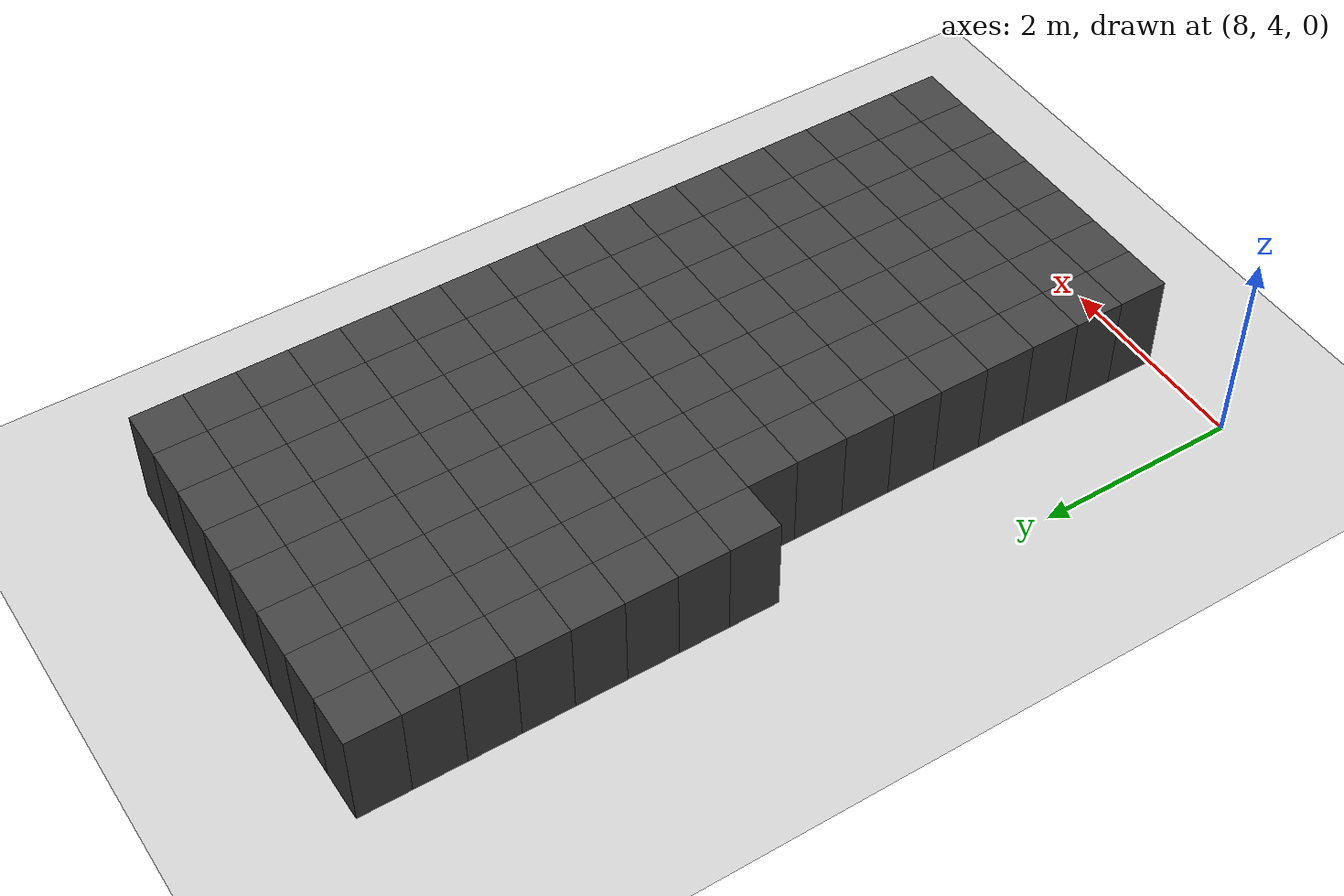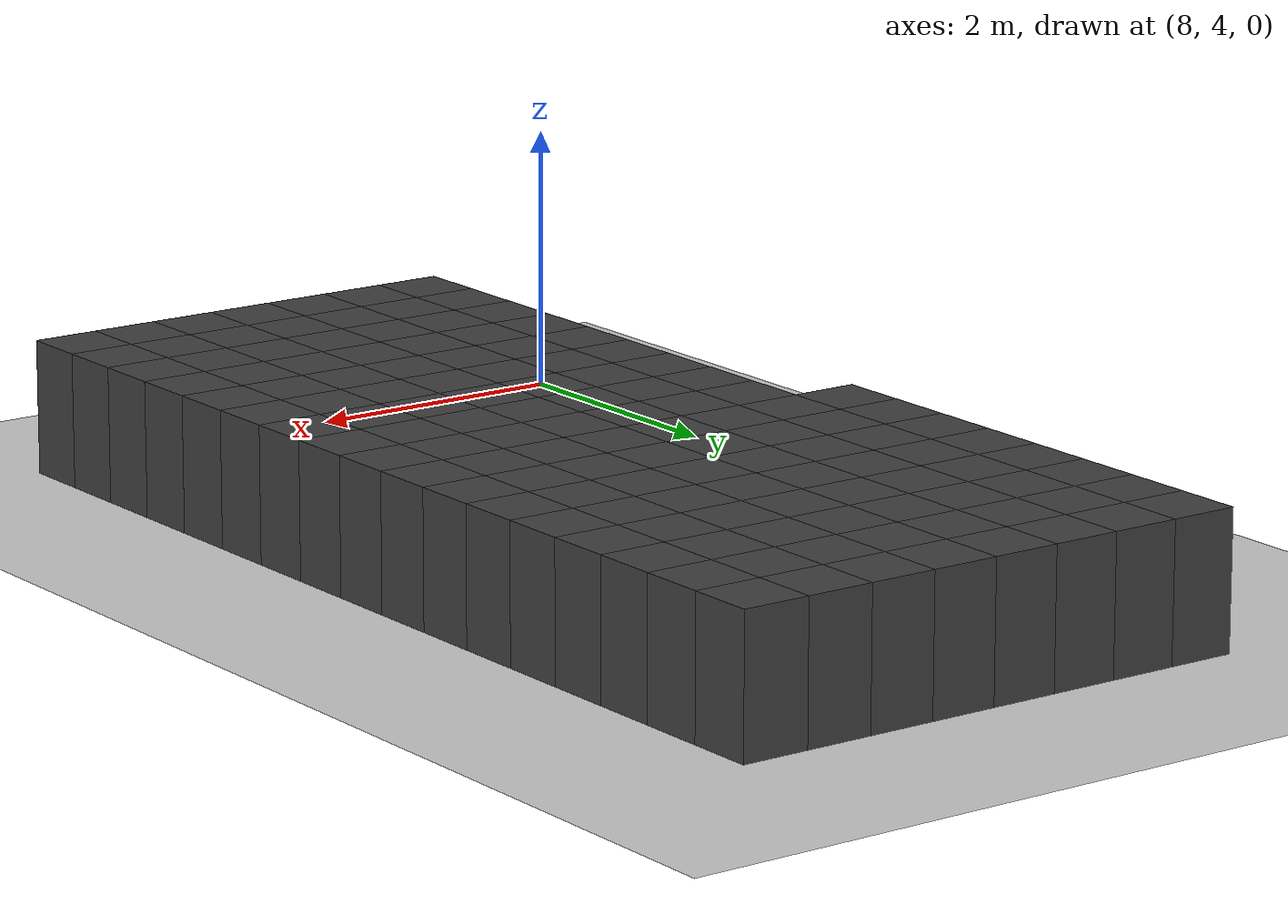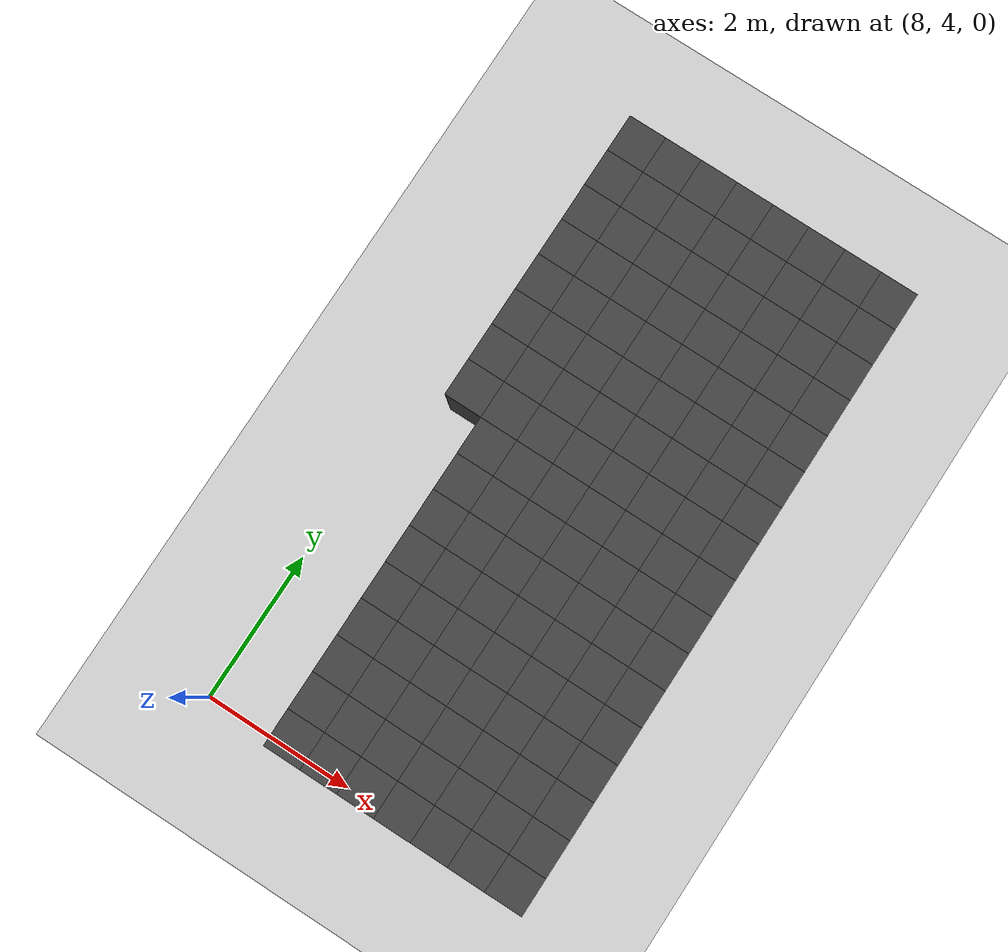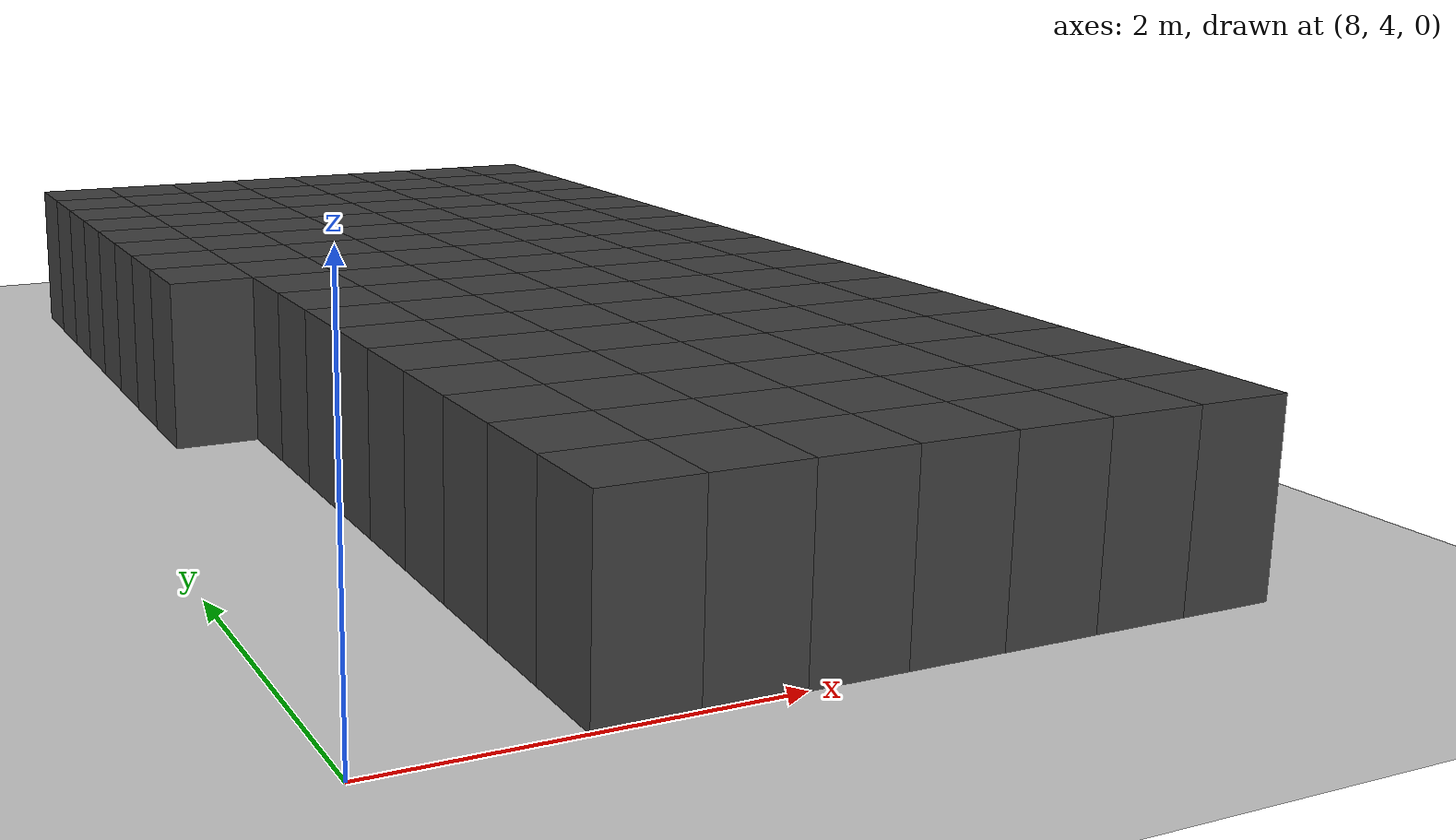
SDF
<sdf version="1.7">
 <world name="map_10777">
  <model name="ground_plane">
   <static>true</static>
   <link name="link">
    <collision name="collision">
     <geometry><plane><normal>0 0 1</normal><size>200 200</size></plane></geometry>
    </collision>
    <visual name="visual">
     <geometry><plane><normal>0 0 1</normal><size>200 200</size></plane></geometry>
     <material><ambient>0.8 0.8 0.8 1</ambient><diffuse>0.8 0.8 0.8 1</diffuse></material>
    </visual>
   </link>
  </model>
  <model name="maze_environment">
   <static>true</static>
   <link name="wall_42">
    <pose>8.750 12.250 0.500 0 0 0</pose>
    <collision name="col"><geometry><box><size>0.5 0.5 1.0</size></box></geometry></collision>
    <visual name="vis">
     <geometry><box><size>0.5 0.5 1.0</size></box></geometry>
     <material><ambient>0.15 0.15 0.15 1</ambient><diffuse>0.25 0.25 0.25 1</diffuse></material>
    </visual>
   </link>
   <link name="wall_43">
    <pose>9.250 12.250 0.500 0 0 0</pose>
    <collision name="col"><geometry><box><size>0.5 0.5 1.0</size></box></geometry></collision>
    <visual name="vis">
     <geometry><box><size>0.5 0.5 1.0</size></box></geometry>
     <material><ambient>0.15 0.15 0.15 1</ambient><diffuse>0.25 0.25 0.25 1</diffuse></material>
    </visual>
   </link>
   <link name="wall_44">
    <pose>9.750 12.250 0.500 0 0 0</pose>
    <collision name="col"><geometry><box><size>0.5 0.5 1.0</size></box></geometry></collision>
    <visual name="vis">
     <geometry><box><size>0.5 0.5 1.0</size></box></geometry>
     <material><ambient>0.15 0.15 0.15 1</ambient><diffuse>0.25 0.25 0.25 1</diffuse></material>
    </visual>
   </link>
   <link name="wall_45">
    <pose>10.250 12.250 0.500 0 0 0</pose>
    <collision name="col"><geometry><box><size>0.5 0.5 1.0</size></box></geometry></collision>
    <visual name="vis">
     <geometry><box><size>0.5 0.5 1.0</size></box></geometry>
     <material><ambient>0.15 0.15 0.15 1</ambient><diffuse>0.25 0.25 0.25 1</diffuse></material>
    </visual>
   </link>
   <link name="wall_46">
    <pose>10.750 12.250 0.500 0 0 0</pose>
    <collision name="col"><geometry><box><size>0.5 0.5 1.0</size></box></geometry></collision>
    <visual name="vis">
     <geometry><box><size>0.5 0.5 1.0</size></box></geometry>
     <material><ambient>0.15 0.15 0.15 1</ambient><diffuse>0.25 0.25 0.25 1</diffuse></material>
    </visual>
   </link>
   <link name="wall_47">
    <pose>11.250 12.250 0.500 0 0 0</pose>
    <collision name="col"><geometry><box><size>0.5 0.5 1.0</size></box></geometry></collision>
    <visual name="vis">
     <geometry><box><size>0.5 0.5 1.0</size></box></geometry>
     <material><ambient>0.15 0.15 0.15 1</ambient><diffuse>0.25 0.25 0.25 1</diffuse></material>
    </visual>
   </link>
   <link name="wall_48">
    <pose>11.750 12.250 0.500 0 0 0</pose>
    <collision name="col"><geometry><box><size>0.5 0.5 1.0</size></box></geometry></collision>
    <visual name="vis">
     <geometry><box><size>0.5 0.5 1.0</size></box></geometry>
     <material><ambient>0.15 0.15 0.15 1</ambient><diffuse>0.25 0.25 0.25 1</diffuse></material>
    </visual>
   </link>
   <link name="wall_49">
    <pose>12.250 12.250 0.500 0 0 0</pose>
    <collision name="col"><geometry><box><size>0.5 0.5 1.0</size></box></geometry></collision>
    <visual name="vis">
     <geometry><box><size>0.5 0.5 1.0</size></box></geometry>
     <material><ambient>0.15 0.15 0.15 1</ambient><diffuse>0.25 0.25 0.25 1</diffuse></material>
    </visual>
   </link>
   <link name="wall_89">
    <pose>8.750 11.750 0.500 0 0 0</pose>
    <collision name="col"><geometry><box><size>0.5 0.5 1.0</size></box></geometry></collision>
    <visual name="vis">
     <geometry><box><size>0.5 0.5 1.0</size></box></geometry>
     <material><ambient>0.15 0.15 0.15 1</ambient><diffuse>0.25 0.25 0.25 1</diffuse></material>
    </visual>
   </link>
   <link name="wall_90">
    <pose>9.250 11.750 0.500 0 0 0</pose>
    <collision name="col"><geometry><box><size>0.5 0.5 1.0</size></box></geometry></collision>
    <visual name="vis">
     <geometry><box><size>0.5 0.5 1.0</size></box></geometry>
     <material><ambient>0.15 0.15 0.15 1</ambient><diffuse>0.25 0.25 0.25 1</diffuse></material>
    </visual>
   </link>
   <link name="wall_91">
    <pose>9.750 11.750 0.500 0 0 0</pose>
    <collision name="col"><geometry><box><size>0.5 0.5 1.0</size></box></geometry></collision>
    <visual name="vis">
     <geometry><box><size>0.5 0.5 1.0</size></box></geometry>
     <material><ambient>0.15 0.15 0.15 1</ambient><diffuse>0.25 0.25 0.25 1</diffuse></material>
    </visual>
   </link>
   <link name="wall_92">
    <pose>10.250 11.750 0.500 0 0 0</pose>
    <collision name="col"><geometry><box><size>0.5 0.5 1.0</size></box></geometry></collision>
    <visual name="vis">
     <geometry><box><size>0.5 0.5 1.0</size></box></geometry>
     <material><ambient>0.15 0.15 0.15 1</ambient><diffuse>0.25 0.25 0.25 1</diffuse></material>
    </visual>
   </link>
   <link name="wall_93">
    <pose>10.750 11.750 0.500 0 0 0</pose>
    <collision name="col"><geometry><box><size>0.5 0.5 1.0</size></box></geometry></collision>
    <visual name="vis">
     <geometry><box><size>0.5 0.5 1.0</size></box></geometry>
     <material><ambient>0.15 0.15 0.15 1</ambient><diffuse>0.25 0.25 0.25 1</diffuse></material>
    </visual>
   </link>
   <link name="wall_94">
    <pose>11.250 11.750 0.500 0 0 0</pose>
    <collision name="col"><geometry><box><size>0.5 0.5 1.0</size></box></geometry></collision>
    <visual name="vis">
     <geometry><box><size>0.5 0.5 1.0</size></box></geometry>
     <material><ambient>0.15 0.15 0.15 1</ambient><diffuse>0.25 0.25 0.25 1</diffuse></material>
    </visual>
   </link>
   <link name="wall_95">
    <pose>11.750 11.750 0.500 0 0 0</pose>
    <collision name="col"><geometry><box><size>0.5 0.5 1.0</size></box></geometry></collision>
    <visual name="vis">
     <geometry><box><size>0.5 0.5 1.0</size></box></geometry>
     <material><ambient>0.15 0.15 0.15 1</ambient><diffuse>0.25 0.25 0.25 1</diffuse></material>
    </visual>
   </link>
   <link name="wall_96">
    <pose>12.250 11.750 0.500 0 0 0</pose>
    <collision name="col"><geometry><box><size>0.5 0.5 1.0</size></box></geometry></collision>
    <visual name="vis">
     <geometry><box><size>0.5 0.5 1.0</size></box></geometry>
     <material><ambient>0.15 0.15 0.15 1</ambient><diffuse>0.25 0.25 0.25 1</diffuse></material>
    </visual>
   </link>
   <link name="wall_136">
    <pose>8.750 11.250 0.500 0 0 0</pose>
    <collision name="col"><geometry><box><size>0.5 0.5 1.0</size></box></geometry></collision>
    <visual name="vis">
     <geometry><box><size>0.5 0.5 1.0</size></box></geometry>
     <material><ambient>0.15 0.15 0.15 1</ambient><diffuse>0.25 0.25 0.25 1</diffuse></material>
    </visual>
   </link>
   <link name="wall_137">
    <pose>9.250 11.250 0.500 0 0 0</pose>
    <collision name="col"><geometry><box><size>0.5 0.5 1.0</size></box></geometry></collision>
    <visual name="vis">
     <geometry><box><size>0.5 0.5 1.0</size></box></geometry>
     <material><ambient>0.15 0.15 0.15 1</ambient><diffuse>0.25 0.25 0.25 1</diffuse></material>
    </visual>
   </link>
   <link name="wall_138">
    <pose>9.750 11.250 0.500 0 0 0</pose>
    <collision name="col"><geometry><box><size>0.5 0.5 1.0</size></box></geometry></collision>
    <visual name="vis">
     <geometry><box><size>0.5 0.5 1.0</size></box></geometry>
     <material><ambient>0.15 0.15 0.15 1</ambient><diffuse>0.25 0.25 0.25 1</diffuse></material>
    </visual>
   </link>
   <link name="wall_139">
    <pose>10.250 11.250 0.500 0 0 0</pose>
    <collision name="col"><geometry><box><size>0.5 0.5 1.0</size></box></geometry></collision>
    <visual name="vis">
     <geometry><box><size>0.5 0.5 1.0</size></box></geometry>
     <material><ambient>0.15 0.15 0.15 1</ambient><diffuse>0.25 0.25 0.25 1</diffuse></material>
    </visual>
   </link>
   <link name="wall_140">
    <pose>10.750 11.250 0.500 0 0 0</pose>
    <collision name="col"><geometry><box><size>0.5 0.5 1.0</size></box></geometry></collision>
    <visual name="vis">
     <geometry><box><size>0.5 0.5 1.0</size></box></geometry>
     <material><ambient>0.15 0.15 0.15 1</ambient><diffuse>0.25 0.25 0.25 1</diffuse></material>
    </visual>
   </link>
   <link name="wall_141">
    <pose>11.250 11.250 0.500 0 0 0</pose>
    <collision name="col"><geometry><box><size>0.5 0.5 1.0</size></box></geometry></collision>
    <visual name="vis">
     <geometry><box><size>0.5 0.5 1.0</size></box></geometry>
     <material><ambient>0.15 0.15 0.15 1</ambient><diffuse>0.25 0.25 0.25 1</diffuse></material>
    </visual>
   </link>
   <link name="wall_142">
    <pose>11.750 11.250 0.500 0 0 0</pose>
    <collision name="col"><geometry><box><size>0.5 0.5 1.0</size></box></geometry></collision>
    <visual name="vis">
     <geometry><box><size>0.5 0.5 1.0</size></box></geometry>
     <material><ambient>0.15 0.15 0.15 1</ambient><diffuse>0.25 0.25 0.25 1</diffuse></material>
    </visual>
   </link>
   <link name="wall_143">
    <pose>12.250 11.250 0.500 0 0 0</pose>
    <collision name="col"><geometry><box><size>0.5 0.5 1.0</size></box></geometry></collision>
    <visual name="vis">
     <geometry><box><size>0.5 0.5 1.0</size></box></geometry>
     <material><ambient>0.15 0.15 0.15 1</ambient><diffuse>0.25 0.25 0.25 1</diffuse></material>
    </visual>
   </link>
   <link name="wall_183">
    <pose>8.750 10.750 0.500 0 0 0</pose>
    <collision name="col"><geometry><box><size>0.5 0.5 1.0</size></box></geometry></collision>
    <visual name="vis">
     <geometry><box><size>0.5 0.5 1.0</size></box></geometry>
     <material><ambient>0.15 0.15 0.15 1</ambient><diffuse>0.25 0.25 0.25 1</diffuse></material>
    </visual>
   </link>
   <link name="wall_184">
    <pose>9.250 10.750 0.500 0 0 0</pose>
    <collision name="col"><geometry><box><size>0.5 0.5 1.0</size></box></geometry></collision>
    <visual name="vis">
     <geometry><box><size>0.5 0.5 1.0</size></box></geometry>
     <material><ambient>0.15 0.15 0.15 1</ambient><diffuse>0.25 0.25 0.25 1</diffuse></material>
    </visual>
   </link>
   <link name="wall_185">
    <pose>9.750 10.750 0.500 0 0 0</pose>
    <collision name="col"><geometry><box><size>0.5 0.5 1.0</size></box></geometry></collision>
    <visual name="vis">
     <geometry><box><size>0.5 0.5 1.0</size></box></geometry>
     <material><ambient>0.15 0.15 0.15 1</ambient><diffuse>0.25 0.25 0.25 1</diffuse></material>
    </visual>
   </link>
   <link name="wall_186">
    <pose>10.250 10.750 0.500 0 0 0</pose>
    <collision name="col"><geometry><box><size>0.5 0.5 1.0</size></box></geometry></collision>
    <visual name="vis">
     <geometry><box><size>0.5 0.5 1.0</size></box></geometry>
     <material><ambient>0.15 0.15 0.15 1</ambient><diffuse>0.25 0.25 0.25 1</diffuse></material>
    </visual>
   </link>
   <link name="wall_187">
    <pose>10.750 10.750 0.500 0 0 0</pose>
    <collision name="col"><geometry><box><size>0.5 0.5 1.0</size></box></geometry></collision>
    <visual name="vis">
     <geometry><box><size>0.5 0.5 1.0</size></box></geometry>
     <material><ambient>0.15 0.15 0.15 1</ambient><diffuse>0.25 0.25 0.25 1</diffuse></material>
    </visual>
   </link>
   <link name="wall_188">
    <pose>11.250 10.750 0.500 0 0 0</pose>
    <collision name="col"><geometry><box><size>0.5 0.5 1.0</size></box></geometry></collision>
    <visual name="vis">
     <geometry><box><size>0.5 0.5 1.0</size></box></geometry>
     <material><ambient>0.15 0.15 0.15 1</ambient><diffuse>0.25 0.25 0.25 1</diffuse></material>
    </visual>
   </link>
   <link name="wall_189">
    <pose>11.750 10.750 0.500 0 0 0</pose>
    <collision name="col"><geometry><box><size>0.5 0.5 1.0</size></box></geometry></collision>
    <visual name="vis">
     <geometry><box><size>0.5 0.5 1.0</size></box></geometry>
     <material><ambient>0.15 0.15 0.15 1</ambient><diffuse>0.25 0.25 0.25 1</diffuse></material>
    </visual>
   </link>
   <link name="wall_190">
    <pose>12.250 10.750 0.500 0 0 0</pose>
    <collision name="col"><geometry><box><size>0.5 0.5 1.0</size></box></geometry></collision>
    <visual name="vis">
     <geometry><box><size>0.5 0.5 1.0</size></box></geometry>
     <material><ambient>0.15 0.15 0.15 1</ambient><diffuse>0.25 0.25 0.25 1</diffuse></material>
    </visual>
   </link>
   <link name="wall_232">
    <pose>8.750 10.250 0.500 0 0 0</pose>
    <collision name="col"><geometry><box><size>0.5 0.5 1.0</size></box></geometry></collision>
    <visual name="vis">
     <geometry><box><size>0.5 0.5 1.0</size></box></geometry>
     <material><ambient>0.15 0.15 0.15 1</ambient><diffuse>0.25 0.25 0.25 1</diffuse></material>
    </visual>
   </link>
   <link name="wall_233">
    <pose>9.250 10.250 0.500 0 0 0</pose>
    <collision name="col"><geometry><box><size>0.5 0.5 1.0</size></box></geometry></collision>
    <visual name="vis">
     <geometry><box><size>0.5 0.5 1.0</size></box></geometry>
     <material><ambient>0.15 0.15 0.15 1</ambient><diffuse>0.25 0.25 0.25 1</diffuse></material>
    </visual>
   </link>
   <link name="wall_234">
    <pose>9.750 10.250 0.500 0 0 0</pose>
    <collision name="col"><geometry><box><size>0.5 0.5 1.0</size></box></geometry></collision>
    <visual name="vis">
     <geometry><box><size>0.5 0.5 1.0</size></box></geometry>
     <material><ambient>0.15 0.15 0.15 1</ambient><diffuse>0.25 0.25 0.25 1</diffuse></material>
    </visual>
   </link>
   <link name="wall_235">
    <pose>10.250 10.250 0.500 0 0 0</pose>
    <collision name="col"><geometry><box><size>0.5 0.5 1.0</size></box></geometry></collision>
    <visual name="vis">
     <geometry><box><size>0.5 0.5 1.0</size></box></geometry>
     <material><ambient>0.15 0.15 0.15 1</ambient><diffuse>0.25 0.25 0.25 1</diffuse></material>
    </visual>
   </link>
   <link name="wall_236">
    <pose>10.750 10.250 0.500 0 0 0</pose>
    <collision name="col"><geometry><box><size>0.5 0.5 1.0</size></box></geometry></collision>
    <visual name="vis">
     <geometry><box><size>0.5 0.5 1.0</size></box></geometry>
     <material><ambient>0.15 0.15 0.15 1</ambient><diffuse>0.25 0.25 0.25 1</diffuse></material>
    </visual>
   </link>
   <link name="wall_237">
    <pose>11.250 10.250 0.500 0 0 0</pose>
    <collision name="col"><geometry><box><size>0.5 0.5 1.0</size></box></geometry></collision>
    <visual name="vis">
     <geometry><box><size>0.5 0.5 1.0</size></box></geometry>
     <material><ambient>0.15 0.15 0.15 1</ambient><diffuse>0.25 0.25 0.25 1</diffuse></material>
    </visual>
   </link>
   <link name="wall_238">
    <pose>11.750 10.250 0.500 0 0 0</pose>
    <collision name="col"><geometry><box><size>0.5 0.5 1.0</size></box></geometry></collision>
    <visual name="vis">
     <geometry><box><size>0.5 0.5 1.0</size></box></geometry>
     <material><ambient>0.15 0.15 0.15 1</ambient><diffuse>0.25 0.25 0.25 1</diffuse></material>
    </visual>
   </link>
   <link name="wall_239">
    <pose>12.250 10.250 0.500 0 0 0</pose>
    <collision name="col"><geometry><box><size>0.5 0.5 1.0</size></box></geometry></collision>
    <visual name="vis">
     <geometry><box><size>0.5 0.5 1.0</size></box></geometry>
     <material><ambient>0.15 0.15 0.15 1</ambient><diffuse>0.25 0.25 0.25 1</diffuse></material>
    </visual>
   </link>
   <link name="wall_281">
    <pose>8.750 9.750 0.500 0 0 0</pose>
    <collision name="col"><geometry><box><size>0.5 0.5 1.0</size></box></geometry></collision>
    <visual name="vis">
     <geometry><box><size>0.5 0.5 1.0</size></box></geometry>
     <material><ambient>0.15 0.15 0.15 1</ambient><diffuse>0.25 0.25 0.25 1</diffuse></material>
    </visual>
   </link>
   <link name="wall_282">
    <pose>9.250 9.750 0.500 0 0 0</pose>
    <collision name="col"><geometry><box><size>0.5 0.5 1.0</size></box></geometry></collision>
    <visual name="vis">
     <geometry><box><size>0.5 0.5 1.0</size></box></geometry>
     <material><ambient>0.15 0.15 0.15 1</ambient><diffuse>0.25 0.25 0.25 1</diffuse></material>
    </visual>
   </link>
   <link name="wall_283">
    <pose>9.750 9.750 0.500 0 0 0</pose>
    <collision name="col"><geometry><box><size>0.5 0.5 1.0</size></box></geometry></collision>
    <visual name="vis">
     <geometry><box><size>0.5 0.5 1.0</size></box></geometry>
     <material><ambient>0.15 0.15 0.15 1</ambient><diffuse>0.25 0.25 0.25 1</diffuse></material>
    </visual>
   </link>
   <link name="wall_284">
    <pose>10.250 9.750 0.500 0 0 0</pose>
    <collision name="col"><geometry><box><size>0.5 0.5 1.0</size></box></geometry></collision>
    <visual name="vis">
     <geometry><box><size>0.5 0.5 1.0</size></box></geometry>
     <material><ambient>0.15 0.15 0.15 1</ambient><diffuse>0.25 0.25 0.25 1</diffuse></material>
    </visual>
   </link>
   <link name="wall_285">
    <pose>10.750 9.750 0.500 0 0 0</pose>
    <collision name="col"><geometry><box><size>0.5 0.5 1.0</size></box></geometry></collision>
    <visual name="vis">
     <geometry><box><size>0.5 0.5 1.0</size></box></geometry>
     <material><ambient>0.15 0.15 0.15 1</ambient><diffuse>0.25 0.25 0.25 1</diffuse></material>
    </visual>
   </link>
   <link name="wall_286">
    <pose>11.250 9.750 0.500 0 0 0</pose>
    <collision name="col"><geometry><box><size>0.5 0.5 1.0</size></box></geometry></collision>
    <visual name="vis">
     <geometry><box><size>0.5 0.5 1.0</size></box></geometry>
     <material><ambient>0.15 0.15 0.15 1</ambient><diffuse>0.25 0.25 0.25 1</diffuse></material>
    </visual>
   </link>
   <link name="wall_287">
    <pose>11.750 9.750 0.500 0 0 0</pose>
    <collision name="col"><geometry><box><size>0.5 0.5 1.0</size></box></geometry></collision>
    <visual name="vis">
     <geometry><box><size>0.5 0.5 1.0</size></box></geometry>
     <material><ambient>0.15 0.15 0.15 1</ambient><diffuse>0.25 0.25 0.25 1</diffuse></material>
    </visual>
   </link>
   <link name="wall_288">
    <pose>12.250 9.750 0.500 0 0 0</pose>
    <collision name="col"><geometry><box><size>0.5 0.5 1.0</size></box></geometry></collision>
    <visual name="vis">
     <geometry><box><size>0.5 0.5 1.0</size></box></geometry>
     <material><ambient>0.15 0.15 0.15 1</ambient><diffuse>0.25 0.25 0.25 1</diffuse></material>
    </visual>
   </link>
   <link name="wall_330">
    <pose>8.750 9.250 0.500 0 0 0</pose>
    <collision name="col"><geometry><box><size>0.5 0.5 1.0</size></box></geometry></collision>
    <visual name="vis">
     <geometry><box><size>0.5 0.5 1.0</size></box></geometry>
     <material><ambient>0.15 0.15 0.15 1</ambient><diffuse>0.25 0.25 0.25 1</diffuse></material>
    </visual>
   </link>
   <link name="wall_331">
    <pose>9.250 9.250 0.500 0 0 0</pose>
    <collision name="col"><geometry><box><size>0.5 0.5 1.0</size></box></geometry></collision>
    <visual name="vis">
     <geometry><box><size>0.5 0.5 1.0</size></box></geometry>
     <material><ambient>0.15 0.15 0.15 1</ambient><diffuse>0.25 0.25 0.25 1</diffuse></material>
    </visual>
   </link>
   <link name="wall_332">
    <pose>9.750 9.250 0.500 0 0 0</pose>
    <collision name="col"><geometry><box><size>0.5 0.5 1.0</size></box></geometry></collision>
    <visual name="vis">
     <geometry><box><size>0.5 0.5 1.0</size></box></geometry>
     <material><ambient>0.15 0.15 0.15 1</ambient><diffuse>0.25 0.25 0.25 1</diffuse></material>
    </visual>
   </link>
   <link name="wall_333">
    <pose>10.250 9.250 0.500 0 0 0</pose>
    <collision name="col"><geometry><box><size>0.5 0.5 1.0</size></box></geometry></collision>
    <visual name="vis">
     <geometry><box><size>0.5 0.5 1.0</size></box></geometry>
     <material><ambient>0.15 0.15 0.15 1</ambient><diffuse>0.25 0.25 0.25 1</diffuse></material>
    </visual>
   </link>
   <link name="wall_334">
    <pose>10.750 9.250 0.500 0 0 0</pose>
    <collision name="col"><geometry><box><size>0.5 0.5 1.0</size></box></geometry></collision>
    <visual name="vis">
     <geometry><box><size>0.5 0.5 1.0</size></box></geometry>
     <material><ambient>0.15 0.15 0.15 1</ambient><diffuse>0.25 0.25 0.25 1</diffuse></material>
    </visual>
   </link>
   <link name="wall_335">
    <pose>11.250 9.250 0.500 0 0 0</pose>
    <collision name="col"><geometry><box><size>0.5 0.5 1.0</size></box></geometry></collision>
    <visual name="vis">
     <geometry><box><size>0.5 0.5 1.0</size></box></geometry>
     <material><ambient>0.15 0.15 0.15 1</ambient><diffuse>0.25 0.25 0.25 1</diffuse></material>
    </visual>
   </link>
   <link name="wall_336">
    <pose>11.750 9.250 0.500 0 0 0</pose>
    <collision name="col"><geometry><box><size>0.5 0.5 1.0</size></box></geometry></collision>
    <visual name="vis">
     <geometry><box><size>0.5 0.5 1.0</size></box></geometry>
     <material><ambient>0.15 0.15 0.15 1</ambient><diffuse>0.25 0.25 0.25 1</diffuse></material>
    </visual>
   </link>
   <link name="wall_337">
    <pose>12.250 9.250 0.500 0 0 0</pose>
    <collision name="col"><geometry><box><size>0.5 0.5 1.0</size></box></geometry></collision>
    <visual name="vis">
     <geometry><box><size>0.5 0.5 1.0</size></box></geometry>
     <material><ambient>0.15 0.15 0.15 1</ambient><diffuse>0.25 0.25 0.25 1</diffuse></material>
    </visual>
   </link>
   <link name="wall_379">
    <pose>8.750 8.750 0.500 0 0 0</pose>
    <collision name="col"><geometry><box><size>0.5 0.5 1.0</size></box></geometry></collision>
    <visual name="vis">
     <geometry><box><size>0.5 0.5 1.0</size></box></geometry>
     <material><ambient>0.15 0.15 0.15 1</ambient><diffuse>0.25 0.25 0.25 1</diffuse></material>
    </visual>
   </link>
   <link name="wall_380">
    <pose>9.250 8.750 0.500 0 0 0</pose>
    <collision name="col"><geometry><box><size>0.5 0.5 1.0</size></box></geometry></collision>
    <visual name="vis">
     <geometry><box><size>0.5 0.5 1.0</size></box></geometry>
     <material><ambient>0.15 0.15 0.15 1</ambient><diffuse>0.25 0.25 0.25 1</diffuse></material>
    </visual>
   </link>
   <link name="wall_381">
    <pose>9.750 8.750 0.500 0 0 0</pose>
    <collision name="col"><geometry><box><size>0.5 0.5 1.0</size></box></geometry></collision>
    <visual name="vis">
     <geometry><box><size>0.5 0.5 1.0</size></box></geometry>
     <material><ambient>0.15 0.15 0.15 1</ambient><diffuse>0.25 0.25 0.25 1</diffuse></material>
    </visual>
   </link>
   <link name="wall_382">
    <pose>10.250 8.750 0.500 0 0 0</pose>
    <collision name="col"><geometry><box><size>0.5 0.5 1.0</size></box></geometry></collision>
    <visual name="vis">
     <geometry><box><size>0.5 0.5 1.0</size></box></geometry>
     <material><ambient>0.15 0.15 0.15 1</ambient><diffuse>0.25 0.25 0.25 1</diffuse></material>
    </visual>
   </link>
   <link name="wall_383">
    <pose>10.750 8.750 0.500 0 0 0</pose>
    <collision name="col"><geometry><box><size>0.5 0.5 1.0</size></box></geometry></collision>
    <visual name="vis">
     <geometry><box><size>0.5 0.5 1.0</size></box></geometry>
     <material><ambient>0.15 0.15 0.15 1</ambient><diffuse>0.25 0.25 0.25 1</diffuse></material>
    </visual>
   </link>
   <link name="wall_384">
    <pose>11.250 8.750 0.500 0 0 0</pose>
    <collision name="col"><geometry><box><size>0.5 0.5 1.0</size></box></geometry></collision>
    <visual name="vis">
     <geometry><box><size>0.5 0.5 1.0</size></box></geometry>
     <material><ambient>0.15 0.15 0.15 1</ambient><diffuse>0.25 0.25 0.25 1</diffuse></material>
    </visual>
   </link>
   <link name="wall_385">
    <pose>11.750 8.750 0.500 0 0 0</pose>
    <collision name="col"><geometry><box><size>0.5 0.5 1.0</size></box></geometry></collision>
    <visual name="vis">
     <geometry><box><size>0.5 0.5 1.0</size></box></geometry>
     <material><ambient>0.15 0.15 0.15 1</ambient><diffuse>0.25 0.25 0.25 1</diffuse></material>
    </visual>
   </link>
   <link name="wall_386">
    <pose>12.250 8.750 0.500 0 0 0</pose>
    <collision name="col"><geometry><box><size>0.5 0.5 1.0</size></box></geometry></collision>
    <visual name="vis">
     <geometry><box><size>0.5 0.5 1.0</size></box></geometry>
     <material><ambient>0.15 0.15 0.15 1</ambient><diffuse>0.25 0.25 0.25 1</diffuse></material>
    </visual>
   </link>
   <link name="wall_429">
    <pose>9.250 8.250 0.500 0 0 0</pose>
    <collision name="col"><geometry><box><size>0.5 0.5 1.0</size></box></geometry></collision>
    <visual name="vis">
     <geometry><box><size>0.5 0.5 1.0</size></box></geometry>
     <material><ambient>0.15 0.15 0.15 1</ambient><diffuse>0.25 0.25 0.25 1</diffuse></material>
    </visual>
   </link>
   <link name="wall_430">
    <pose>9.750 8.250 0.500 0 0 0</pose>
    <collision name="col"><geometry><box><size>0.5 0.5 1.0</size></box></geometry></collision>
    <visual name="vis">
     <geometry><box><size>0.5 0.5 1.0</size></box></geometry>
     <material><ambient>0.15 0.15 0.15 1</ambient><diffuse>0.25 0.25 0.25 1</diffuse></material>
    </visual>
   </link>
   <link name="wall_431">
    <pose>10.250 8.250 0.500 0 0 0</pose>
    <collision name="col"><geometry><box><size>0.5 0.5 1.0</size></box></geometry></collision>
    <visual name="vis">
     <geometry><box><size>0.5 0.5 1.0</size></box></geometry>
     <material><ambient>0.15 0.15 0.15 1</ambient><diffuse>0.25 0.25 0.25 1</diffuse></material>
    </visual>
   </link>
   <link name="wall_432">
    <pose>10.750 8.250 0.500 0 0 0</pose>
    <collision name="col"><geometry><box><size>0.5 0.5 1.0</size></box></geometry></collision>
    <visual name="vis">
     <geometry><box><size>0.5 0.5 1.0</size></box></geometry>
     <material><ambient>0.15 0.15 0.15 1</ambient><diffuse>0.25 0.25 0.25 1</diffuse></material>
    </visual>
   </link>
   <link name="wall_433">
    <pose>11.250 8.250 0.500 0 0 0</pose>
    <collision name="col"><geometry><box><size>0.5 0.5 1.0</size></box></geometry></collision>
    <visual name="vis">
     <geometry><box><size>0.5 0.5 1.0</size></box></geometry>
     <material><ambient>0.15 0.15 0.15 1</ambient><diffuse>0.25 0.25 0.25 1</diffuse></material>
    </visual>
   </link>
   <link name="wall_434">
    <pose>11.750 8.250 0.500 0 0 0</pose>
    <collision name="col"><geometry><box><size>0.5 0.5 1.0</size></box></geometry></collision>
    <visual name="vis">
     <geometry><box><size>0.5 0.5 1.0</size></box></geometry>
     <material><ambient>0.15 0.15 0.15 1</ambient><diffuse>0.25 0.25 0.25 1</diffuse></material>
    </visual>
   </link>
   <link name="wall_435">
    <pose>12.250 8.250 0.500 0 0 0</pose>
    <collision name="col"><geometry><box><size>0.5 0.5 1.0</size></box></geometry></collision>
    <visual name="vis">
     <geometry><box><size>0.5 0.5 1.0</size></box></geometry>
     <material><ambient>0.15 0.15 0.15 1</ambient><diffuse>0.25 0.25 0.25 1</diffuse></material>
    </visual>
   </link>
   <link name="wall_478">
    <pose>9.250 7.750 0.500 0 0 0</pose>
    <collision name="col"><geometry><box><size>0.5 0.5 1.0</size></box></geometry></collision>
    <visual name="vis">
     <geometry><box><size>0.5 0.5 1.0</size></box></geometry>
     <material><ambient>0.15 0.15 0.15 1</ambient><diffuse>0.25 0.25 0.25 1</diffuse></material>
    </visual>
   </link>
   <link name="wall_479">
    <pose>9.750 7.750 0.500 0 0 0</pose>
    <collision name="col"><geometry><box><size>0.5 0.5 1.0</size></box></geometry></collision>
    <visual name="vis">
     <geometry><box><size>0.5 0.5 1.0</size></box></geometry>
     <material><ambient>0.15 0.15 0.15 1</ambient><diffuse>0.25 0.25 0.25 1</diffuse></material>
    </visual>
   </link>
   <link name="wall_480">
    <pose>10.250 7.750 0.500 0 0 0</pose>
    <collision name="col"><geometry><box><size>0.5 0.5 1.0</size></box></geometry></collision>
    <visual name="vis">
     <geometry><box><size>0.5 0.5 1.0</size></box></geometry>
     <material><ambient>0.15 0.15 0.15 1</ambient><diffuse>0.25 0.25 0.25 1</diffuse></material>
    </visual>
   </link>
   <link name="wall_481">
    <pose>10.750 7.750 0.500 0 0 0</pose>
    <collision name="col"><geometry><box><size>0.5 0.5 1.0</size></box></geometry></collision>
    <visual name="vis">
     <geometry><box><size>0.5 0.5 1.0</size></box></geometry>
     <material><ambient>0.15 0.15 0.15 1</ambient><diffuse>0.25 0.25 0.25 1</diffuse></material>
    </visual>
   </link>
   <link name="wall_482">
    <pose>11.250 7.750 0.500 0 0 0</pose>
    <collision name="col"><geometry><box><size>0.5 0.5 1.0</size></box></geometry></collision>
    <visual name="vis">
     <geometry><box><size>0.5 0.5 1.0</size></box></geometry>
     <material><ambient>0.15 0.15 0.15 1</ambient><diffuse>0.25 0.25 0.25 1</diffuse></material>
    </visual>
   </link>
   <link name="wall_483">
    <pose>11.750 7.750 0.500 0 0 0</pose>
    <collision name="col"><geometry><box><size>0.5 0.5 1.0</size></box></geometry></collision>
    <visual name="vis">
     <geometry><box><size>0.5 0.5 1.0</size></box></geometry>
     <material><ambient>0.15 0.15 0.15 1</ambient><diffuse>0.25 0.25 0.25 1</diffuse></material>
    </visual>
   </link>
   <link name="wall_484">
    <pose>12.250 7.750 0.500 0 0 0</pose>
    <collision name="col"><geometry><box><size>0.5 0.5 1.0</size></box></geometry></collision>
    <visual name="vis">
     <geometry><box><size>0.5 0.5 1.0</size></box></geometry>
     <material><ambient>0.15 0.15 0.15 1</ambient><diffuse>0.25 0.25 0.25 1</diffuse></material>
    </visual>
   </link>
   <link name="wall_521">
    <pose>9.250 7.250 0.500 0 0 0</pose>
    <collision name="col"><geometry><box><size>0.5 0.5 1.0</size></box></geometry></collision>
    <visual name="vis">
     <geometry><box><size>0.5 0.5 1.0</size></box></geometry>
     <material><ambient>0.15 0.15 0.15 1</ambient><diffuse>0.25 0.25 0.25 1</diffuse></material>
    </visual>
   </link>
   <link name="wall_522">
    <pose>9.750 7.250 0.500 0 0 0</pose>
    <collision name="col"><geometry><box><size>0.5 0.5 1.0</size></box></geometry></collision>
    <visual name="vis">
     <geometry><box><size>0.5 0.5 1.0</size></box></geometry>
     <material><ambient>0.15 0.15 0.15 1</ambient><diffuse>0.25 0.25 0.25 1</diffuse></material>
    </visual>
   </link>
   <link name="wall_523">
    <pose>10.250 7.250 0.500 0 0 0</pose>
    <collision name="col"><geometry><box><size>0.5 0.5 1.0</size></box></geometry></collision>
    <visual name="vis">
     <geometry><box><size>0.5 0.5 1.0</size></box></geometry>
     <material><ambient>0.15 0.15 0.15 1</ambient><diffuse>0.25 0.25 0.25 1</diffuse></material>
    </visual>
   </link>
   <link name="wall_524">
    <pose>10.750 7.250 0.500 0 0 0</pose>
    <collision name="col"><geometry><box><size>0.5 0.5 1.0</size></box></geometry></collision>
    <visual name="vis">
     <geometry><box><size>0.5 0.5 1.0</size></box></geometry>
     <material><ambient>0.15 0.15 0.15 1</ambient><diffuse>0.25 0.25 0.25 1</diffuse></material>
    </visual>
   </link>
   <link name="wall_525">
    <pose>11.250 7.250 0.500 0 0 0</pose>
    <collision name="col"><geometry><box><size>0.5 0.5 1.0</size></box></geometry></collision>
    <visual name="vis">
     <geometry><box><size>0.5 0.5 1.0</size></box></geometry>
     <material><ambient>0.15 0.15 0.15 1</ambient><diffuse>0.25 0.25 0.25 1</diffuse></material>
    </visual>
   </link>
   <link name="wall_526">
    <pose>11.750 7.250 0.500 0 0 0</pose>
    <collision name="col"><geometry><box><size>0.5 0.5 1.0</size></box></geometry></collision>
    <visual name="vis">
     <geometry><box><size>0.5 0.5 1.0</size></box></geometry>
     <material><ambient>0.15 0.15 0.15 1</ambient><diffuse>0.25 0.25 0.25 1</diffuse></material>
    </visual>
   </link>
   <link name="wall_527">
    <pose>12.250 7.250 0.500 0 0 0</pose>
    <collision name="col"><geometry><box><size>0.5 0.5 1.0</size></box></geometry></collision>
    <visual name="vis">
     <geometry><box><size>0.5 0.5 1.0</size></box></geometry>
     <material><ambient>0.15 0.15 0.15 1</ambient><diffuse>0.25 0.25 0.25 1</diffuse></material>
    </visual>
   </link>
   <link name="wall_564">
    <pose>9.250 6.750 0.500 0 0 0</pose>
    <collision name="col"><geometry><box><size>0.5 0.5 1.0</size></box></geometry></collision>
    <visual name="vis">
     <geometry><box><size>0.5 0.5 1.0</size></box></geometry>
     <material><ambient>0.15 0.15 0.15 1</ambient><diffuse>0.25 0.25 0.25 1</diffuse></material>
    </visual>
   </link>
   <link name="wall_565">
    <pose>9.750 6.750 0.500 0 0 0</pose>
    <collision name="col"><geometry><box><size>0.5 0.5 1.0</size></box></geometry></collision>
    <visual name="vis">
     <geometry><box><size>0.5 0.5 1.0</size></box></geometry>
     <material><ambient>0.15 0.15 0.15 1</ambient><diffuse>0.25 0.25 0.25 1</diffuse></material>
    </visual>
   </link>
   <link name="wall_566">
    <pose>10.250 6.750 0.500 0 0 0</pose>
    <collision name="col"><geometry><box><size>0.5 0.5 1.0</size></box></geometry></collision>
    <visual name="vis">
     <geometry><box><size>0.5 0.5 1.0</size></box></geometry>
     <material><ambient>0.15 0.15 0.15 1</ambient><diffuse>0.25 0.25 0.25 1</diffuse></material>
    </visual>
   </link>
   <link name="wall_567">
    <pose>10.750 6.750 0.500 0 0 0</pose>
    <collision name="col"><geometry><box><size>0.5 0.5 1.0</size></box></geometry></collision>
    <visual name="vis">
     <geometry><box><size>0.5 0.5 1.0</size></box></geometry>
     <material><ambient>0.15 0.15 0.15 1</ambient><diffuse>0.25 0.25 0.25 1</diffuse></material>
    </visual>
   </link>
   <link name="wall_568">
    <pose>11.250 6.750 0.500 0 0 0</pose>
    <collision name="col"><geometry><box><size>0.5 0.5 1.0</size></box></geometry></collision>
    <visual name="vis">
     <geometry><box><size>0.5 0.5 1.0</size></box></geometry>
     <material><ambient>0.15 0.15 0.15 1</ambient><diffuse>0.25 0.25 0.25 1</diffuse></material>
    </visual>
   </link>
   <link name="wall_569">
    <pose>11.750 6.750 0.500 0 0 0</pose>
    <collision name="col"><geometry><box><size>0.5 0.5 1.0</size></box></geometry></collision>
    <visual name="vis">
     <geometry><box><size>0.5 0.5 1.0</size></box></geometry>
     <material><ambient>0.15 0.15 0.15 1</ambient><diffuse>0.25 0.25 0.25 1</diffuse></material>
    </visual>
   </link>
   <link name="wall_570">
    <pose>12.250 6.750 0.500 0 0 0</pose>
    <collision name="col"><geometry><box><size>0.5 0.5 1.0</size></box></geometry></collision>
    <visual name="vis">
     <geometry><box><size>0.5 0.5 1.0</size></box></geometry>
     <material><ambient>0.15 0.15 0.15 1</ambient><diffuse>0.25 0.25 0.25 1</diffuse></material>
    </visual>
   </link>
   <link name="wall_605">
    <pose>9.250 6.250 0.500 0 0 0</pose>
    <collision name="col"><geometry><box><size>0.5 0.5 1.0</size></box></geometry></collision>
    <visual name="vis">
     <geometry><box><size>0.5 0.5 1.0</size></box></geometry>
     <material><ambient>0.15 0.15 0.15 1</ambient><diffuse>0.25 0.25 0.25 1</diffuse></material>
    </visual>
   </link>
   <link name="wall_606">
    <pose>9.750 6.250 0.500 0 0 0</pose>
    <collision name="col"><geometry><box><size>0.5 0.5 1.0</size></box></geometry></collision>
    <visual name="vis">
     <geometry><box><size>0.5 0.5 1.0</size></box></geometry>
     <material><ambient>0.15 0.15 0.15 1</ambient><diffuse>0.25 0.25 0.25 1</diffuse></material>
    </visual>
   </link>
   <link name="wall_607">
    <pose>10.250 6.250 0.500 0 0 0</pose>
    <collision name="col"><geometry><box><size>0.5 0.5 1.0</size></box></geometry></collision>
    <visual name="vis">
     <geometry><box><size>0.5 0.5 1.0</size></box></geometry>
     <material><ambient>0.15 0.15 0.15 1</ambient><diffuse>0.25 0.25 0.25 1</diffuse></material>
    </visual>
   </link>
   <link name="wall_608">
    <pose>10.750 6.250 0.500 0 0 0</pose>
    <collision name="col"><geometry><box><size>0.5 0.5 1.0</size></box></geometry></collision>
    <visual name="vis">
     <geometry><box><size>0.5 0.5 1.0</size></box></geometry>
     <material><ambient>0.15 0.15 0.15 1</ambient><diffuse>0.25 0.25 0.25 1</diffuse></material>
    </visual>
   </link>
   <link name="wall_609">
    <pose>11.250 6.250 0.500 0 0 0</pose>
    <collision name="col"><geometry><box><size>0.5 0.5 1.0</size></box></geometry></collision>
    <visual name="vis">
     <geometry><box><size>0.5 0.5 1.0</size></box></geometry>
     <material><ambient>0.15 0.15 0.15 1</ambient><diffuse>0.25 0.25 0.25 1</diffuse></material>
    </visual>
   </link>
   <link name="wall_610">
    <pose>11.750 6.250 0.500 0 0 0</pose>
    <collision name="col"><geometry><box><size>0.5 0.5 1.0</size></box></geometry></collision>
    <visual name="vis">
     <geometry><box><size>0.5 0.5 1.0</size></box></geometry>
     <material><ambient>0.15 0.15 0.15 1</ambient><diffuse>0.25 0.25 0.25 1</diffuse></material>
    </visual>
   </link>
   <link name="wall_611">
    <pose>12.250 6.250 0.500 0 0 0</pose>
    <collision name="col"><geometry><box><size>0.5 0.5 1.0</size></box></geometry></collision>
    <visual name="vis">
     <geometry><box><size>0.5 0.5 1.0</size></box></geometry>
     <material><ambient>0.15 0.15 0.15 1</ambient><diffuse>0.25 0.25 0.25 1</diffuse></material>
    </visual>
   </link>
   <link name="wall_647">
    <pose>9.250 5.750 0.500 0 0 0</pose>
    <collision name="col"><geometry><box><size>0.5 0.5 1.0</size></box></geometry></collision>
    <visual name="vis">
     <geometry><box><size>0.5 0.5 1.0</size></box></geometry>
     <material><ambient>0.15 0.15 0.15 1</ambient><diffuse>0.25 0.25 0.25 1</diffuse></material>
    </visual>
   </link>
   <link name="wall_648">
    <pose>9.750 5.750 0.500 0 0 0</pose>
    <collision name="col"><geometry><box><size>0.5 0.5 1.0</size></box></geometry></collision>
    <visual name="vis">
     <geometry><box><size>0.5 0.5 1.0</size></box></geometry>
     <material><ambient>0.15 0.15 0.15 1</ambient><diffuse>0.25 0.25 0.25 1</diffuse></material>
    </visual>
   </link>
   <link name="wall_649">
    <pose>10.250 5.750 0.500 0 0 0</pose>
    <collision name="col"><geometry><box><size>0.5 0.5 1.0</size></box></geometry></collision>
    <visual name="vis">
     <geometry><box><size>0.5 0.5 1.0</size></box></geometry>
     <material><ambient>0.15 0.15 0.15 1</ambient><diffuse>0.25 0.25 0.25 1</diffuse></material>
    </visual>
   </link>
   <link name="wall_650">
    <pose>10.750 5.750 0.500 0 0 0</pose>
    <collision name="col"><geometry><box><size>0.5 0.5 1.0</size></box></geometry></collision>
    <visual name="vis">
     <geometry><box><size>0.5 0.5 1.0</size></box></geometry>
     <material><ambient>0.15 0.15 0.15 1</ambient><diffuse>0.25 0.25 0.25 1</diffuse></material>
    </visual>
   </link>
   <link name="wall_651">
    <pose>11.250 5.750 0.500 0 0 0</pose>
    <collision name="col"><geometry><box><size>0.5 0.5 1.0</size></box></geometry></collision>
    <visual name="vis">
     <geometry><box><size>0.5 0.5 1.0</size></box></geometry>
     <material><ambient>0.15 0.15 0.15 1</ambient><diffuse>0.25 0.25 0.25 1</diffuse></material>
    </visual>
   </link>
   <link name="wall_652">
    <pose>11.750 5.750 0.500 0 0 0</pose>
    <collision name="col"><geometry><box><size>0.5 0.5 1.0</size></box></geometry></collision>
    <visual name="vis">
     <geometry><box><size>0.5 0.5 1.0</size></box></geometry>
     <material><ambient>0.15 0.15 0.15 1</ambient><diffuse>0.25 0.25 0.25 1</diffuse></material>
    </visual>
   </link>
   <link name="wall_653">
    <pose>12.250 5.750 0.500 0 0 0</pose>
    <collision name="col"><geometry><box><size>0.5 0.5 1.0</size></box></geometry></collision>
    <visual name="vis">
     <geometry><box><size>0.5 0.5 1.0</size></box></geometry>
     <material><ambient>0.15 0.15 0.15 1</ambient><diffuse>0.25 0.25 0.25 1</diffuse></material>
    </visual>
   </link>
   <link name="wall_689">
    <pose>9.250 5.250 0.500 0 0 0</pose>
    <collision name="col"><geometry><box><size>0.5 0.5 1.0</size></box></geometry></collision>
    <visual name="vis">
     <geometry><box><size>0.5 0.5 1.0</size></box></geometry>
     <material><ambient>0.15 0.15 0.15 1</ambient><diffuse>0.25 0.25 0.25 1</diffuse></material>
    </visual>
   </link>
   <link name="wall_690">
    <pose>9.750 5.250 0.500 0 0 0</pose>
    <collision name="col"><geometry><box><size>0.5 0.5 1.0</size></box></geometry></collision>
    <visual name="vis">
     <geometry><box><size>0.5 0.5 1.0</size></box></geometry>
     <material><ambient>0.15 0.15 0.15 1</ambient><diffuse>0.25 0.25 0.25 1</diffuse></material>
    </visual>
   </link>
   <link name="wall_691">
    <pose>10.250 5.250 0.500 0 0 0</pose>
    <collision name="col"><geometry><box><size>0.5 0.5 1.0</size></box></geometry></collision>
    <visual name="vis">
     <geometry><box><size>0.5 0.5 1.0</size></box></geometry>
     <material><ambient>0.15 0.15 0.15 1</ambient><diffuse>0.25 0.25 0.25 1</diffuse></material>
    </visual>
   </link>
   <link name="wall_692">
    <pose>10.750 5.250 0.500 0 0 0</pose>
    <collision name="col"><geometry><box><size>0.5 0.5 1.0</size></box></geometry></collision>
    <visual name="vis">
     <geometry><box><size>0.5 0.5 1.0</size></box></geometry>
     <material><ambient>0.15 0.15 0.15 1</ambient><diffuse>0.25 0.25 0.25 1</diffuse></material>
    </visual>
   </link>
   <link name="wall_693">
    <pose>11.250 5.250 0.500 0 0 0</pose>
    <collision name="col"><geometry><box><size>0.5 0.5 1.0</size></box></geometry></collision>
    <visual name="vis">
     <geometry><box><size>0.5 0.5 1.0</size></box></geometry>
     <material><ambient>0.15 0.15 0.15 1</ambient><diffuse>0.25 0.25 0.25 1</diffuse></material>
    </visual>
   </link>
   <link name="wall_694">
    <pose>11.750 5.250 0.500 0 0 0</pose>
    <collision name="col"><geometry><box><size>0.5 0.5 1.0</size></box></geometry></collision>
    <visual name="vis">
     <geometry><box><size>0.5 0.5 1.0</size></box></geometry>
     <material><ambient>0.15 0.15 0.15 1</ambient><diffuse>0.25 0.25 0.25 1</diffuse></material>
    </visual>
   </link>
   <link name="wall_695">
    <pose>12.250 5.250 0.500 0 0 0</pose>
    <collision name="col"><geometry><box><size>0.5 0.5 1.0</size></box></geometry></collision>
    <visual name="vis">
     <geometry><box><size>0.5 0.5 1.0</size></box></geometry>
     <material><ambient>0.15 0.15 0.15 1</ambient><diffuse>0.25 0.25 0.25 1</diffuse></material>
    </visual>
   </link>
   <link name="wall_737">
    <pose>9.250 4.750 0.500 0 0 0</pose>
    <collision name="col"><geometry><box><size>0.5 0.5 1.0</size></box></geometry></collision>
    <visual name="vis">
     <geometry><box><size>0.5 0.5 1.0</size></box></geometry>
     <material><ambient>0.15 0.15 0.15 1</ambient><diffuse>0.25 0.25 0.25 1</diffuse></material>
    </visual>
   </link>
   <link name="wall_738">
    <pose>9.750 4.750 0.500 0 0 0</pose>
    <collision name="col"><geometry><box><size>0.5 0.5 1.0</size></box></geometry></collision>
    <visual name="vis">
     <geometry><box><size>0.5 0.5 1.0</size></box></geometry>
     <material><ambient>0.15 0.15 0.15 1</ambient><diffuse>0.25 0.25 0.25 1</diffuse></material>
    </visual>
   </link>
   <link name="wall_739">
    <pose>10.250 4.750 0.500 0 0 0</pose>
    <collision name="col"><geometry><box><size>0.5 0.5 1.0</size></box></geometry></collision>
    <visual name="vis">
     <geometry><box><size>0.5 0.5 1.0</size></box></geometry>
     <material><ambient>0.15 0.15 0.15 1</ambient><diffuse>0.25 0.25 0.25 1</diffuse></material>
    </visual>
   </link>
   <link name="wall_740">
    <pose>10.750 4.750 0.500 0 0 0</pose>
    <collision name="col"><geometry><box><size>0.5 0.5 1.0</size></box></geometry></collision>
    <visual name="vis">
     <geometry><box><size>0.5 0.5 1.0</size></box></geometry>
     <material><ambient>0.15 0.15 0.15 1</ambient><diffuse>0.25 0.25 0.25 1</diffuse></material>
    </visual>
   </link>
   <link name="wall_741">
    <pose>11.250 4.750 0.500 0 0 0</pose>
    <collision name="col"><geometry><box><size>0.5 0.5 1.0</size></box></geometry></collision>
    <visual name="vis">
     <geometry><box><size>0.5 0.5 1.0</size></box></geometry>
     <material><ambient>0.15 0.15 0.15 1</ambient><diffuse>0.25 0.25 0.25 1</diffuse></material>
    </visual>
   </link>
   <link name="wall_742">
    <pose>11.750 4.750 0.500 0 0 0</pose>
    <collision name="col"><geometry><box><size>0.5 0.5 1.0</size></box></geometry></collision>
    <visual name="vis">
     <geometry><box><size>0.5 0.5 1.0</size></box></geometry>
     <material><ambient>0.15 0.15 0.15 1</ambient><diffuse>0.25 0.25 0.25 1</diffuse></material>
    </visual>
   </link>
   <link name="wall_743">
    <pose>12.250 4.750 0.500 0 0 0</pose>
    <collision name="col"><geometry><box><size>0.5 0.5 1.0</size></box></geometry></collision>
    <visual name="vis">
     <geometry><box><size>0.5 0.5 1.0</size></box></geometry>
     <material><ambient>0.15 0.15 0.15 1</ambient><diffuse>0.25 0.25 0.25 1</diffuse></material>
    </visual>
   </link>
   <link name="wall_785">
    <pose>9.250 4.250 0.500 0 0 0</pose>
    <collision name="col"><geometry><box><size>0.5 0.5 1.0</size></box></geometry></collision>
    <visual name="vis">
     <geometry><box><size>0.5 0.5 1.0</size></box></geometry>
     <material><ambient>0.15 0.15 0.15 1</ambient><diffuse>0.25 0.25 0.25 1</diffuse></material>
    </visual>
   </link>
   <link name="wall_786">
    <pose>9.750 4.250 0.500 0 0 0</pose>
    <collision name="col"><geometry><box><size>0.5 0.5 1.0</size></box></geometry></collision>
    <visual name="vis">
     <geometry><box><size>0.5 0.5 1.0</size></box></geometry>
     <material><ambient>0.15 0.15 0.15 1</ambient><diffuse>0.25 0.25 0.25 1</diffuse></material>
    </visual>
   </link>
   <link name="wall_787">
    <pose>10.250 4.250 0.500 0 0 0</pose>
    <collision name="col"><geometry><box><size>0.5 0.5 1.0</size></box></geometry></collision>
    <visual name="vis">
     <geometry><box><size>0.5 0.5 1.0</size></box></geometry>
     <material><ambient>0.15 0.15 0.15 1</ambient><diffuse>0.25 0.25 0.25 1</diffuse></material>
    </visual>
   </link>
   <link name="wall_788">
    <pose>10.750 4.250 0.500 0 0 0</pose>
    <collision name="col"><geometry><box><size>0.5 0.5 1.0</size></box></geometry></collision>
    <visual name="vis">
     <geometry><box><size>0.5 0.5 1.0</size></box></geometry>
     <material><ambient>0.15 0.15 0.15 1</ambient><diffuse>0.25 0.25 0.25 1</diffuse></material>
    </visual>
   </link>
   <link name="wall_789">
    <pose>11.250 4.250 0.500 0 0 0</pose>
    <collision name="col"><geometry><box><size>0.5 0.5 1.0</size></box></geometry></collision>
    <visual name="vis">
     <geometry><box><size>0.5 0.5 1.0</size></box></geometry>
     <material><ambient>0.15 0.15 0.15 1</ambient><diffuse>0.25 0.25 0.25 1</diffuse></material>
    </visual>
   </link>
   <link name="wall_790">
    <pose>11.750 4.250 0.500 0 0 0</pose>
    <collision name="col"><geometry><box><size>0.5 0.5 1.0</size></box></geometry></collision>
    <visual name="vis">
     <geometry><box><size>0.5 0.5 1.0</size></box></geometry>
     <material><ambient>0.15 0.15 0.15 1</ambient><diffuse>0.25 0.25 0.25 1</diffuse></material>
    </visual>
   </link>
   <link name="wall_791">
    <pose>12.250 4.250 0.500 0 0 0</pose>
    <collision name="col"><geometry><box><size>0.5 0.5 1.0</size></box></geometry></collision>
    <visual name="vis">
     <geometry><box><size>0.5 0.5 1.0</size></box></geometry>
     <material><ambient>0.15 0.15 0.15 1</ambient><diffuse>0.25 0.25 0.25 1</diffuse></material>
    </visual>
   </link>
  </model>
 </world>
</sdf>
